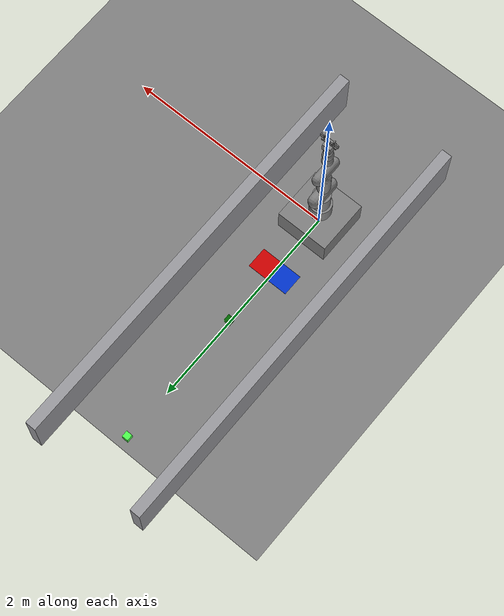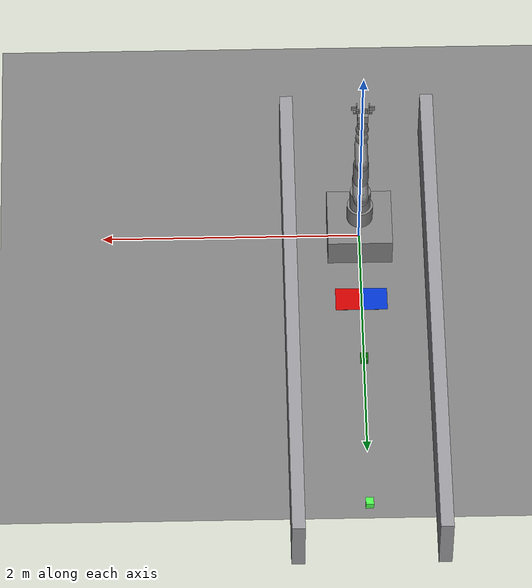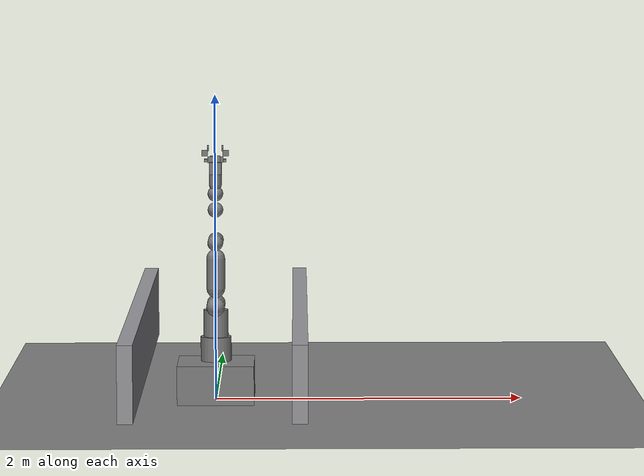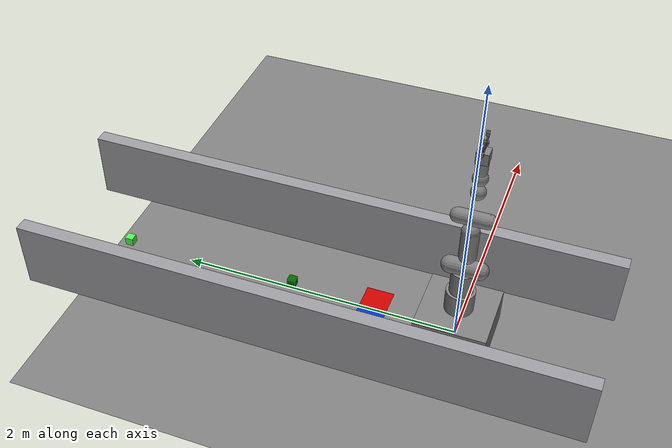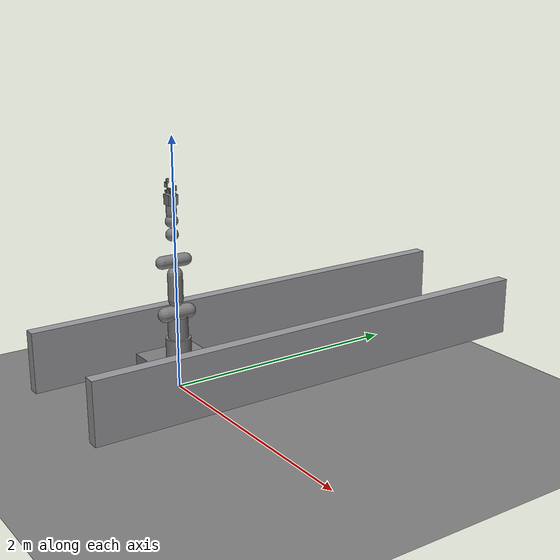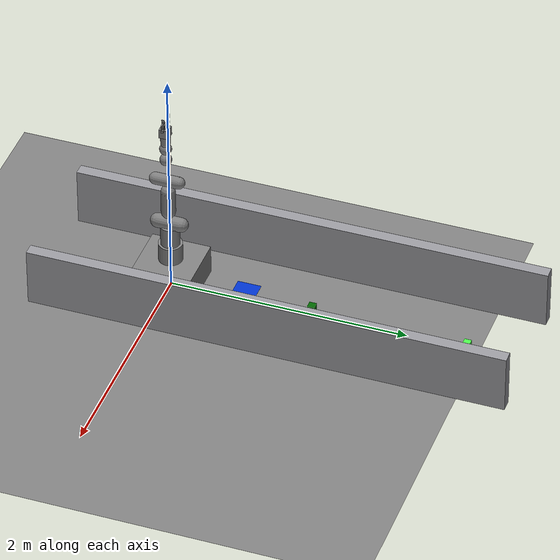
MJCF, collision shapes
<mujoco model="tidybot_push">
  <compiler angle="radian" meshdir="tidybot/assets" autolimits="true"/>

  <option integrator="implicitfast"/>
  <option cone="elliptic" impratio="10"/>

  <default>
    <default class="base">
      <default class="base/visual">
        <geom type="mesh" contype="0" conaffinity="0" group="2"/>
      </default>
      <default class="base/collision">
        <geom type="box" group="3" contype="0" conaffinity="0"/>
      </default>
    </default>

    <default class="gen3">
      <default class="gen3/visual">
        <geom type="mesh" contype="0" conaffinity="0" group="2" rgba="0.75294 0.75294 0.75294 1"/>
      </default>
      <default class="gen3/collision">
        <geom type="capsule" group="3" contype="0" conaffinity="0"/>
      </default>
      <default class="large_actuator">
        <position kp="2000" kv="100" forcerange="-105 105"/>
      </default>
      <default class="small_actuator">
        <position kp="500" kv="50" forcerange="-52 52"/>
      </default>
    </default>

    <default class="2f85">
      <mesh scale="0.001 0.001 0.001"/>
      <general biastype="affine"/>
      <joint axis="1 0 0"/>
      <default class="driver">
        <joint range="0 0.8" armature="0.005" damping="0.1" solimplimit="0.95 0.99 0.001" solreflimit="0.005 1"/>
      </default>
      <default class="follower">
        <joint range="-0.872664 0.872664" armature="0.001" pos="0 -0.018 0.0065" solimplimit="0.95 0.99 0.001" solreflimit="0.005 1"/>
      </default>
      <default class="spring_link">
        <joint range="-0.29670597283 0.8" armature="0.001" stiffness="0.05" springref="2.62" damping="0.00125"/>
      </default>
      <default class="coupler">
        <joint range="-1.57 0" armature="0.001" solimplimit="0.95 0.99 0.001" solreflimit="0.005 1"/>
      </default>
      <default class="2f85/visual">
        <geom type="mesh" contype="0" conaffinity="0" group="2"/>
      </default>
      <default class="2f85/collision">
        <geom type="box" group="3" contype="0" conaffinity="0"/>
        <default class="pad_box1">
          <geom mass="0" type="box" pos="0 -0.0026 0.028125" size="0.011 0.004 0.009375" friction="0.7" solimp="0.95 0.99 0.001" solref="0.004 1" priority="1" rgba="0.55 0.55 0.55 1" contype="1" conaffinity="1"/>
        </default>
        <default class="pad_box2">
          <geom mass="0" type="box" pos="0 -0.0026 0.009375" size="0.011 0.004 0.009375" friction="0.6" solimp="0.95 0.99 0.001" solref="0.004 1" priority="1" rgba="0.45 0.45 0.45 1" contype="1" conaffinity="1"/>
        </default>
      </default>
    </default>
    <site size="0.001" rgba="0.5 0.5 0.5 0.3" group="4"/>
  </default>

  <asset>
    <material name="black" rgba="0.11372549 0.11372549 0.10196078 1"/>
    <material name="gray" rgba="0.62745098 0.65098039 0.64705882 1"/>
    <material name="dark_gray" rgba="0.35294118 0.37647059 0.37254902 1"/>
    <mesh file="base/bumper.stl"/>
    <mesh file="base/bottom_plate.stl"/>
    <mesh file="base/body.stl"/>
    <mesh file="base/top_plate.stl"/>
    <mesh file="base/arm_plate.stl"/>
    <mesh name="gen3/base_link" file="gen3/base_link.stl"/>
    <mesh name="shoulder_link" file="gen3/shoulder_link.stl"/>
    <mesh name="half_arm_1_link" file="gen3/half_arm_1_link.stl"/>
    <mesh name="half_arm_2_link" file="gen3/half_arm_2_link.stl"/>
    <mesh name="forearm_link" file="gen3/forearm_link.stl"/>
    <mesh name="spherical_wrist_1_link" file="gen3/spherical_wrist_1_link.stl"/>
    <mesh name="spherical_wrist_2_link" file="gen3/spherical_wrist_2_link.stl"/>
    <mesh name="bracelet_with_vision_link" file="gen3/bracelet_with_vision_link.stl"/>
    <material name="metal" rgba="0.58 0.58 0.58 1"/>
    <material name="silicone" rgba="0.1882 0.1882 0.1882 1"/>
    <material name="2f85/gray" rgba="0.4627 0.4627 0.4627 1"/>
    <material name="2f85/black" rgba="0.149 0.149 0.149 1"/>
    <mesh class="2f85" file="2f85/base.stl"/>
    <mesh class="2f85" file="2f85/driver.stl"/>
    <mesh class="2f85" file="2f85/coupler.stl"/>
    <mesh class="2f85" file="2f85/follower.stl"/>
    <mesh class="2f85" file="2f85/pad.stl"/>
    <mesh class="2f85" file="2f85/silicone_pad.stl"/>
    <mesh class="2f85" file="2f85/spring_link.stl"/>
  </asset>

  <worldbody>
    <light name="top" pos="0 0 2" mode="trackcom"/>

    <body name="base_link">
      <inertial pos="-0.000018 -0.000005 0.045575" mass="61.697" diaginertia="2.5 2.5 2.5"/>
      <joint name="joint_x" type="slide" axis="1 0 0"/>
      <joint name="joint_y" type="slide" axis="0 1 0"/>
      <joint name="joint_th"/>
      <geom class="base/visual" mesh="bumper" material="black"/>
      <geom class="base/visual" mesh="bottom_plate" material="dark_gray"/>
      <geom class="base/visual" mesh="body" material="gray"/>
      <geom class="base/visual" mesh="top_plate" material="dark_gray"/>
      <geom class="base/visual" mesh="arm_plate" material="gray"/>
      <geom class="base/collision" name="base_collision" size="0.25 0.25 0.15" pos="0 0 0.1"/>

      <body name="gen3/base_link" pos="0 0 0.335" quat="1 0 0 0">
        <geom class="gen3/visual" mesh="gen3/base_link"/>
        <geom class="gen3/collision" type="cylinder" size="0.1 0.08"/>
        <body name="shoulder_link" pos="0 0 0.15643" quat="0 1 0 0">
          <inertial pos="-2.3e-05 -0.010364 -0.07336" quat="0.707051 0.0451246 -0.0453544 0.704263" mass="1.3773" diaginertia="0.00488868 0.00457 0.00135132"/>
          <joint name="joint_1"/>
          <geom class="gen3/visual" mesh="shoulder_link"/>
          <geom class="gen3/collision" type="cylinder" size="0.08 0.1"/>
          <body name="half_arm_1_link" pos="0 0.005375 -0.12838" quat="1 1 0 0">
            <joint name="joint_2" range="-2.24 2.24"/>
            <geom class="gen3/visual" mesh="half_arm_1_link"/>
            <geom class="gen3/collision" size="0.06 0.1"/>
            <body name="half_arm_2_link" pos="0 -0.21038 -0.006375" quat="1 -1 0 0">
              <joint name="joint_3"/>
              <geom class="gen3/visual" mesh="half_arm_2_link"/>
              <geom class="gen3/collision" size="0.06 0.1"/>
              <body name="forearm_link" pos="0 0.006375 -0.21038" quat="1 1 0 0">
                <joint name="joint_4" range="-2.57 2.57"/>
                <geom class="gen3/visual" mesh="forearm_link"/>
                <geom class="gen3/collision" size="0.05 0.1"/>
                <body name="spherical_wrist_1_link" pos="0 -0.20843 -0.006375" quat="1 -1 0 0">
                  <joint name="joint_5"/>
                  <geom class="gen3/visual" mesh="spherical_wrist_1_link"/>
                  <geom class="gen3/collision" type="sphere" size="0.05"/>
                  <body name="spherical_wrist_2_link" pos="0 0.00017505 -0.10593" quat="1 1 0 0">
                    <joint name="joint_6" range="-2.09 2.09"/>
                    <geom class="gen3/visual" mesh="spherical_wrist_2_link"/>
                    <geom class="gen3/collision" type="sphere" size="0.05"/>
                    <body name="bracelet_link" pos="0 -0.10593 -0.00017505" quat="1 -1 0 0">
                      <joint name="joint_7"/>
                      <geom class="gen3/visual" mesh="bracelet_with_vision_link"/>
                      <geom class="gen3/collision" size="0.04 0.05"/>
                      <body name="gripper_base" pos="0 0 -0.06149039" quat="0 -1 1 0" childclass="2f85">
                        <geom class="2f85/visual" mesh="base" material="2f85/black"/>
                        <geom class="2f85/collision" size="0.04 0.04 0.04"/>
                        <body name="right_driver" pos="0 0.0306011 0.054904">
                          <joint name="right_driver_joint" class="driver"/>
                          <geom class="2f85/visual" mesh="driver" material="2f85/gray"/>
                          <geom class="2f85/collision" size="0.005 0.02 0.02"/>
                          <body name="right_coupler" pos="0 0.0315 -0.0041">
                            <joint name="right_coupler_joint" class="coupler"/>
                            <geom class="2f85/visual" mesh="coupler" material="2f85/black"/>
                            <geom class="2f85/collision" size="0.01 0.01 0.01"/>
                          </body>
                        </body>
                        <body name="right_spring_link" pos="0 0.0132 0.0609">
                          <joint name="right_spring_link_joint" class="spring_link"/>
                          <geom class="2f85/visual" mesh="spring_link" material="2f85/black"/>
                          <geom class="2f85/collision" size="0.005 0.02 0.02"/>
                          <body name="right_follower" pos="0 0.055 0.0375">
                            <joint name="right_follower_joint" class="follower"/>
                            <geom class="2f85/visual" mesh="follower" material="2f85/black"/>
                            <geom class="2f85/collision" size="0.005 0.02 0.02"/>
                            <body name="right_pad" pos="0 -0.0189 0.01352">
                              <geom class="pad_box1" name="right_pad1"/>
                              <geom class="pad_box2" name="right_pad2"/>
                              <geom class="2f85/visual" mesh="pad"/>
                            </body>
                          </body>
                        </body>
                        <body name="left_driver" pos="0 -0.0306011 0.054904" quat="0 0 0 1">
                          <joint name="left_driver_joint" class="driver"/>
                          <geom class="2f85/visual" mesh="driver" material="2f85/gray"/>
                          <geom class="2f85/collision" size="0.005 0.02 0.02"/>
                          <body name="left_coupler" pos="0 0.0315 -0.0041">
                            <joint name="left_coupler_joint" class="coupler"/>
                            <geom class="2f85/visual" mesh="coupler" material="2f85/black"/>
                            <geom class="2f85/collision" size="0.01 0.01 0.01"/>
                          </body>
                        </body>
                        <body name="left_spring_link" pos="0 -0.0132 0.0609" quat="0 0 0 1">
                          <joint name="left_spring_link_joint" class="spring_link"/>
                          <geom class="2f85/visual" mesh="spring_link" material="2f85/black"/>
                          <geom class="2f85/collision" size="0.005 0.02 0.02"/>
                          <body name="left_follower" pos="0 0.055 0.0375">
                            <joint name="left_follower_joint" class="follower"/>
                            <geom class="2f85/visual" mesh="follower" material="2f85/black"/>
                            <geom class="2f85/collision" size="0.005 0.02 0.02"/>
                            <body name="left_pad" pos="0 -0.0189 0.01352">
                              <geom class="pad_box1" name="left_pad1"/>
                              <geom class="pad_box2" name="left_pad2"/>
                              <geom class="2f85/visual" mesh="pad"/>
                            </body>
                          </body>
                        </body>
                      </body>
                    </body>
                  </body>
                </body>
              </body>
            </body>
          </body>
        </body>
      </body>
    </body>

    <body name="binA" pos="-0.1 0.6 0">
      <geom name="binA_floor" pos="0 0 0.0005" size="0.1 0.1 0.0005" type="box" rgba="0 0.2 0.8 1" contype="0" conaffinity="0"/>
    </body>
    <body name="binB" pos="0.1 0.6 0">
      <geom name="binB_floor" pos="0 0 0.0005" size="0.1 0.1 0.0005" type="box" rgba="0.8 0 0 1" contype="0" conaffinity="0"/>
    </body>

    <body name="cube" pos="0 1.2 0.07">
      <freejoint/>
      <geom name="cube_geom" size="0.03 0.03 0.03" type="box" mass="2" rgba="0 0.4 0 1" contype="1" conaffinity="1"/>
    </body>

    <body name="goal_marker" pos="0 2.5 0.05" gravcomp="1">
      <freejoint/>
      <geom name="goal_marker_geom" size="0.03 0.03 0.03" type="box" rgba="0.3 1 0.3 1" contype="0" conaffinity="0"/>
    </body>

    <body name="tablelink" pos="0 .2 0">
        <geom name="table_geom" group="4" pos="0.0 0.0 0.0" size="2.8 2.4 0.1" type="plane" mass="10" friction="0.2 0.005 0.0001" contype="1" conaffinity="1"/>
    </body>

    <!-- Hallway corridor: two static walls along +y. Inner faces at x=+/-0.50;
         base half-width 0.25 -> ~0.25 m clearance each side. Span y in [-1, 3]. -->
    <geom name="wall_left" type="box" pos="-0.55 1.0 0.25" size="0.05 2.0 0.25" contype="1" conaffinity="1" rgba="0.6 0.6 0.62 1"/>
    <geom name="wall_right" type="box" pos="0.55 1.0 0.25" size="0.05 2.0 0.25" contype="1" conaffinity="1" rgba="0.6 0.6 0.62 1"/>
  </worldbody>

  <contact>
    <exclude body1="bracelet_link" body2="left_driver"/>
    <exclude body1="bracelet_link" body2="right_driver"/>
    <exclude body1="bracelet_link" body2="left_spring_link"/>
    <exclude body1="bracelet_link" body2="right_spring_link"/>
    <exclude body1="right_coupler" body2="right_follower"/>
    <exclude body1="left_coupler" body2="left_follower"/>

    <pair geom1="cube_geom" geom2="table_geom"/>
    <pair geom1="cube_geom" geom2="left_pad1"/>
    <pair geom1="cube_geom" geom2="left_pad2"/>
    <pair geom1="cube_geom" geom2="right_pad1"/>
    <pair geom1="cube_geom" geom2="right_pad2"/>
    <pair geom1="table_geom" geom2="left_pad1"/>
    <pair geom1="table_geom" geom2="right_pad1"/>

    <pair geom1="cube_geom" geom2="base_collision" solref="0.04 1" solimp="0.9 0.95 0.01"/>
    <pair geom1="wall_left" geom2="base_collision" solref="0.04 1" solimp="0.9 0.95 0.01"/>
    <pair geom1="wall_right" geom2="base_collision" solref="0.04 1" solimp="0.9 0.95 0.01"/>
  </contact>

  <tendon>
    <fixed name="split">
      <joint joint="right_driver_joint" coef="0.5"/>
      <joint joint="left_driver_joint" coef="0.5"/>
    </fixed>
  </tendon>

  <equality>
    <connect anchor="0 0 0" body1="right_follower" body2="right_coupler" solimp="0.95 0.99 0.001" solref="0.005 1"/>
    <connect anchor="0 0 0" body1="left_follower" body2="left_coupler" solimp="0.95 0.99 0.001" solref="0.005 1"/>
    <joint joint1="right_driver_joint" joint2="left_driver_joint" polycoef="0 1 0 0 0" solimp="0.95 0.99 0.001" solref="0.005 1"/>
  </equality>

  <actuator>
    <position name="joint_x" joint="joint_x" kp="50000" kv="2500" forcerange="-150 150"/>
    <position name="joint_y" joint="joint_y" kp="50000" kv="2500" forcerange="-150 150"/>
    <position name="joint_th" joint="joint_th" kp="10000" kv="500" forcerange="-100 100"/>
    <position class="large_actuator" name="joint_1" joint="joint_1"/>
    <position class="large_actuator" name="joint_2" joint="joint_2" ctrlrange="-2.2497 2.2497"/>
    <position class="large_actuator" name="joint_3" joint="joint_3"/>
    <position class="large_actuator" name="joint_4" joint="joint_4" ctrlrange="-2.5796 2.5796"/>
    <position class="small_actuator" name="joint_5" joint="joint_5"/>
    <position class="small_actuator" name="joint_6" joint="joint_6" ctrlrange="-2.0996 2.0996"/>
    <position class="small_actuator" name="joint_7" joint="joint_7"/>
    <general class="2f85" name="fingers_actuator" tendon="split" forcerange="-5 5" ctrlrange="0 255" gainprm="0.3137 0 0" biasprm="0 -100 -10"/>
  </actuator>
</mujoco>
